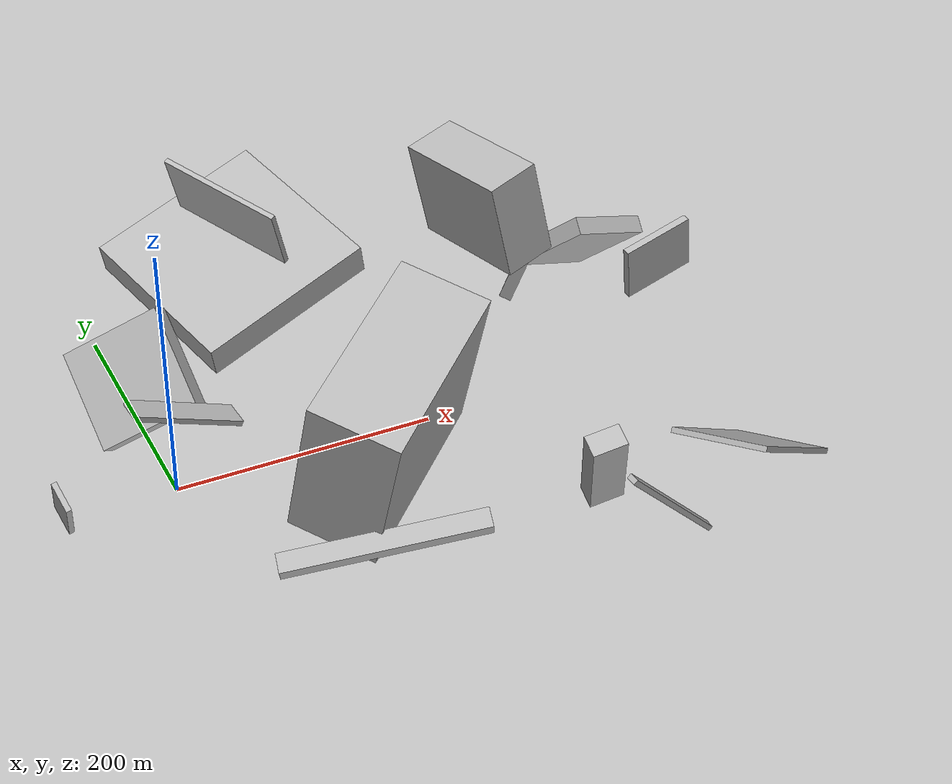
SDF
<sdf version="1.6">
 <world name="default">
  <scene>
   <sky><clouds><speed>12</speed></clouds></sky>
   <ambient>0.4 0.4 0.4 1</ambient>
   <background>0.7 0.7 0.7 1</background>
   <shadows>1</shadows>
  </scene>
  <gravity>0 0 -9.8066</gravity>
  <magnetic_field>6e-06 2.3e-05 -4.2e-05</magnetic_field>
  <physics default="0" name="default_physics" type="ode">
   <ode>
    <solver>
     <type>quick</type>
     <iters>10</iters>
     <sor>1.0</sor>
     <use_dynamic_moi_rescaling>0</use_dynamic_moi_rescaling>
    </solver>
    <constraints>
     <cfm>0</cfm>
     <erp>0.2</erp>
     <contact_max_correcting_vel>100</contact_max_correcting_vel>
     <contact_surface_layer>0.001</contact_surface_layer>
    </constraints>
   </ode>
   <max_step_size>0.004</max_step_size>
   <real_time_factor>1</real_time_factor>
   <real_time_update_rate>250</real_time_update_rate>
  </physics>
  <light name="sun" type="directional">
   <pose>0 0 10 0 0 0</pose>
   <diffuse>0.8 0.8 0.8 1</diffuse>
   <specular>0.2 0.2 0.2 1</specular>
   <attenuation>
    <range>1000</range>
    <constant>0.9</constant>
    <linear>0.01</linear>
    <quadratic>0.001</quadratic>
   </attenuation>
   <direction>-0.5 0.1 -0.9</direction>
  </light>
  <model name="building_1">
   <static>0</static>
   <pose>-47.491815733247705 39.04794333049519 67.90726403961975 0.8491537453749903 -0.721920430234325 1.7068287153242638</pose>
   <link name="link">
    <gravity>0</gravity>
    <pose>0 0 39.0 0 0 0</pose>
    <collision name="collision"><geometry><box><size>75 17 78</size></box></geometry></collision>
    <visual name="visual">
     <cast_shadows>0</cast_shadows>
     <geometry><box><size>75 17 78</size></box></geometry>
     <material>
      <script>
       <uri>model://HANNAS_wall/materials/scripts</uri>
       <uri>model://HANNAS_wall/materials/textures</uri>
       <name>vrc/HANNAS_wall</name>
      </script>
     </material>
    </visual>
   </link>
  </model>
  <model name="building_2">
   <static>0</static>
   <pose>247.34320040144314 -185.29609204795497 51.00455121860834 -0.4143954496822601 0.18878952805861748 3.042943465906953</pose>
   <link name="link">
    <gravity>0</gravity>
    <pose>0 0 39.5 0 0 0</pose>
    <collision name="collision"><geometry><box><size>25 16 79</size></box></geometry></collision>
    <visual name="visual">
     <cast_shadows>0</cast_shadows>
     <geometry><box><size>25 16 79</size></box></geometry>
     <material>
      <script>
       <uri>model://HANNAS_wall/materials/scripts</uri>
       <uri>model://HANNAS_wall/materials/textures</uri>
       <name>vrc/HANNAS_wall</name>
      </script>
     </material>
    </visual>
   </link>
  </model>
  <model name="building_3">
   <static>0</static>
   <pose>190.01365662083643 -30.889569638236154 96.78221180894602 1.7704302297362615 0.24889782189254891 -0.8076269089077479</pose>
   <link name="link">
    <gravity>0</gravity>
    <pose>0 0 75.0 0 0 0</pose>
    <collision name="collision"><geometry><box><size>69 132 150</size></box></geometry></collision>
    <visual name="visual">
     <cast_shadows>0</cast_shadows>
     <geometry><box><size>69 132 150</size></box></geometry>
     <material>
      <script>
       <uri>model://HANNAS_wall/materials/scripts</uri>
       <uri>model://HANNAS_wall/materials/textures</uri>
       <name>vrc/HANNAS_wall</name>
      </script>
     </material>
    </visual>
   </link>
  </model>
  <model name="building_4">
   <static>0</static>
   <pose>-91.91062176791121 -47.33837423239387 52.285189567524384 1.9094703411006755 -1.0518135754030398 -1.78278454374608</pose>
   <link name="link">
    <gravity>0</gravity>
    <pose>0 0 2.0 0 0 0</pose>
    <collision name="collision"><geometry><box><size>42 23 4</size></box></geometry></collision>
    <visual name="visual">
     <cast_shadows>0</cast_shadows>
     <geometry><box><size>42 23 4</size></box></geometry>
     <material>
      <script>
       <uri>model://HANNAS_wall/materials/scripts</uri>
       <uri>model://HANNAS_wall/materials/textures</uri>
       <name>vrc/HANNAS_wall</name>
      </script>
     </material>
    </visual>
   </link>
  </model>
  <model name="building_5">
   <static>0</static>
   <pose>281.853700867461 -222.76571420605495 57.9814680549226 2.307369022808575 0.2304802488787178 -1.3500373790041342</pose>
   <link name="link">
    <gravity>0</gravity>
    <pose>0 0 2.0 0 0 0</pose>
    <collision name="collision"><geometry><box><size>7 150 4</size></box></geometry></collision>
    <visual name="visual">
     <cast_shadows>0</cast_shadows>
     <geometry><box><size>7 150 4</size></box></geometry>
     <material>
      <script>
       <uri>model://HANNAS_wall/materials/scripts</uri>
       <uri>model://HANNAS_wall/materials/textures</uri>
       <name>vrc/HANNAS_wall</name>
      </script>
     </material>
    </visual>
   </link>
  </model>
  <model name="building_6">
   <static>0</static>
   <pose>117.18388257565142 199.9495340092143 60.416147246398836 -2.9673889335181487 -0.24824473176708572 0.2476654341201304</pose>
   <link name="link">
    <gravity>0</gravity>
    <pose>0 0 13.0 0 0 0</pose>
    <collision name="collision"><geometry><box><size>150 150 26</size></box></geometry></collision>
    <visual name="visual">
     <cast_shadows>0</cast_shadows>
     <geometry><box><size>150 150 26</size></box></geometry>
     <material>
      <script>
       <uri>model://HANNAS_wall/materials/scripts</uri>
       <uri>model://HANNAS_wall/materials/textures</uri>
       <name>vrc/HANNAS_wall</name>
      </script>
     </material>
    </visual>
   </link>
  </model>
  <model name="building_7">
   <static>0</static>
   <pose>417.82540031640775 38.8076117219631 44.51740051504715 0.18669775724306117 0.1298677473230983 -1.392017271003556</pose>
   <link name="link">
    <gravity>0</gravity>
    <pose>0 0 24.0 0 0 0</pose>
    <collision name="collision"><geometry><box><size>6 60 48</size></box></geometry></collision>
    <visual name="visual">
     <cast_shadows>0</cast_shadows>
     <geometry><box><size>6 60 48</size></box></geometry>
     <material>
      <script>
       <uri>model://HANNAS_wall/materials/scripts</uri>
       <uri>model://HANNAS_wall/materials/textures</uri>
       <name>vrc/HANNAS_wall</name>
      </script>
     </material>
    </visual>
   </link>
  </model>
  <model name="building_8">
   <static>0</static>
   <pose>252.44415292460783 92.67164631309623 151.6048593708421 -1.226034138865369 -1.3649745686437948 3.0464032010895465</pose>
   <link name="link">
    <gravity>0</gravity>
    <pose>0 0 48.5 0 0 0</pose>
    <collision name="collision"><geometry><box><size>76 41 97</size></box></geometry></collision>
    <visual name="visual">
     <cast_shadows>0</cast_shadows>
     <geometry><box><size>76 41 97</size></box></geometry>
     <material>
      <script>
       <uri>model://HANNAS_wall/materials/scripts</uri>
       <uri>model://HANNAS_wall/materials/textures</uri>
       <name>vrc/HANNAS_wall</name>
      </script>
     </material>
    </visual>
   </link>
  </model>
  <model name="building_9">
   <static>0</static>
   <pose>70.72454287332118 179.73700382687986 143.86886105057224 1.6832976391527348 -0.34279156850273096 0.4499204502570494</pose>
   <link name="link">
    <gravity>0</gravity>
    <pose>0 0 53.0 0 0 0</pose>
    <collision name="collision"><geometry><box><size>4 53 106</size></box></geometry></collision>
    <visual name="visual">
     <cast_shadows>0</cast_shadows>
     <geometry><box><size>4 53 106</size></box></geometry>
     <material>
      <script>
       <uri>model://HANNAS_wall/materials/scripts</uri>
       <uri>model://HANNAS_wall/materials/textures</uri>
       <name>vrc/HANNAS_wall</name>
      </script>
     </material>
    </visual>
   </link>
  </model>
  <model name="building_10">
   <static>0</static>
   <pose>-1.2265770289549662 -44.3076393139597 103.23787307019664 -3.052641428052592 0.4357757190296296 0.1428253338561749</pose>
   <link name="link">
    <gravity>0</gravity>
    <pose>0 0 2.0 0 0 0</pose>
    <collision name="collision"><geometry><box><size>86 20 4</size></box></geometry></collision>
    <visual name="visual">
     <cast_shadows>0</cast_shadows>
     <geometry><box><size>86 20 4</size></box></geometry>
     <material>
      <script>
       <uri>model://HANNAS_wall/materials/scripts</uri>
       <uri>model://HANNAS_wall/materials/textures</uri>
       <name>vrc/HANNAS_wall</name>
      </script>
     </material>
    </visual>
   </link>
  </model>
  <model name="building_11">
   <static>0</static>
   <pose>296.4522880887925 89.34602030959982 78.07428157956983 1.2272636454050567 -0.5689600440817182 0.46114953402320463</pose>
   <link name="link">
    <gravity>0</gravity>
    <pose>0 0 17.0 0 0 0</pose>
    <collision name="collision"><geometry><box><size>4 8 34</size></box></geometry></collision>
    <visual name="visual">
     <cast_shadows>0</cast_shadows>
     <geometry><box><size>4 8 34</size></box></geometry>
     <material>
      <script>
       <uri>model://HANNAS_wall/materials/scripts</uri>
       <uri>model://HANNAS_wall/materials/textures</uri>
       <name>vrc/HANNAS_wall</name>
      </script>
     </material>
    </visual>
   </link>
  </model>
  <model name="building_12">
   <static>0</static>
   <pose>103.68984435785131 -136.96114224139816 27.918300923875254 2.8500872332264504 1.0517957387170223 1.0423256041986229</pose>
   <link name="link">
    <gravity>0</gravity>
    <pose>0 0 7.5 0 0 0</pose>
    <collision name="collision"><geometry><box><size>12 150 15</size></box></geometry></collision>
    <visual name="visual">
     <cast_shadows>0</cast_shadows>
     <geometry><box><size>12 150 15</size></box></geometry>
     <material>
      <script>
       <uri>model://HANNAS_wall/materials/scripts</uri>
       <uri>model://HANNAS_wall/materials/textures</uri>
       <name>vrc/HANNAS_wall</name>
      </script>
     </material>
    </visual>
   </link>
  </model>
  <model name="building_13">
   <static>0</static>
   <pose>375.944328148021 -228.40963400168366 74.58865385332429 1.6972236479235963 -0.6014131876425982 -2.549863573023944</pose>
   <link name="link">
    <gravity>0</gravity>
    <pose>0 0 33.5 0 0 0</pose>
    <collision name="collision"><geometry><box><size>150 4 67</size></box></geometry></collision>
    <visual name="visual">
     <cast_shadows>0</cast_shadows>
     <geometry><box><size>150 4 67</size></box></geometry>
     <material>
      <script>
       <uri>model://HANNAS_wall/materials/scripts</uri>
       <uri>model://HANNAS_wall/materials/textures</uri>
       <name>vrc/HANNAS_wall</name>
      </script>
     </material>
    </visual>
   </link>
  </model>
  <model name="building_14">
   <static>0</static>
   <pose>372.36635177029234 92.45348824193445 68.54282581724148 2.376167595907368 0.3610197923738815 0.27080796311335054</pose>
   <link name="link">
    <gravity>0</gravity>
    <pose>0 0 7.0 0 0 0</pose>
    <collision name="collision"><geometry><box><size>74 72 14</size></box></geometry></collision>
    <visual name="visual">
     <cast_shadows>0</cast_shadows>
     <geometry><box><size>74 72 14</size></box></geometry>
     <material>
      <script>
       <uri>model://HANNAS_wall/materials/scripts</uri>
       <uri>model://HANNAS_wall/materials/textures</uri>
       <name>vrc/HANNAS_wall</name>
      </script>
     </material>
    </visual>
   </link>
  </model>
  <model name="building_15">
   <static>0</static>
   <pose>323.03756684790204 93.09909441787255 49.404970358608956 2.383933201933698 -1.0723864288875018 -1.5648727584495061</pose>
   <link name="link">
    <gravity>0</gravity>
    <pose>0 0 5.0 0 0 0</pose>
    <collision name="collision"><geometry><box><size>74 10 10</size></box></geometry></collision>
    <visual name="visual">
     <cast_shadows>0</cast_shadows>
     <geometry><box><size>74 10 10</size></box></geometry>
     <material>
      <script>
       <uri>model://HANNAS_wall/materials/scripts</uri>
       <uri>model://HANNAS_wall/materials/textures</uri>
       <name>vrc/HANNAS_wall</name>
      </script>
     </material>
    </visual>
   </link>
  </model>
 </world>
</sdf>
